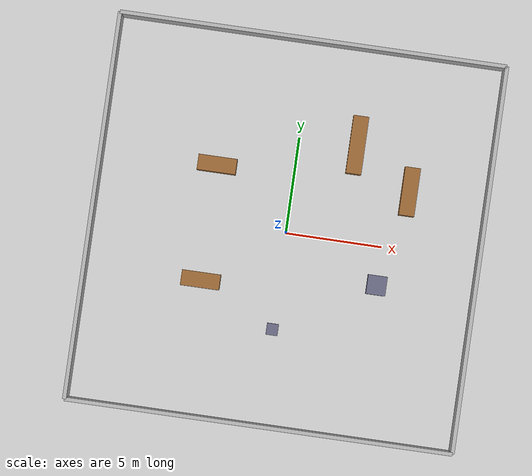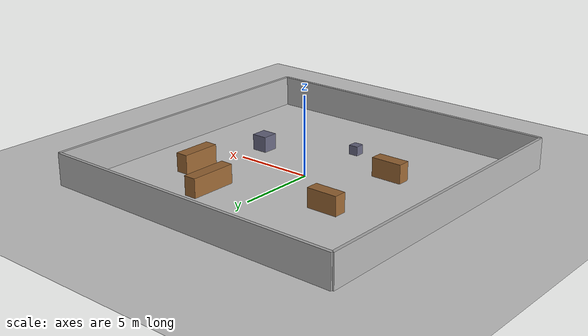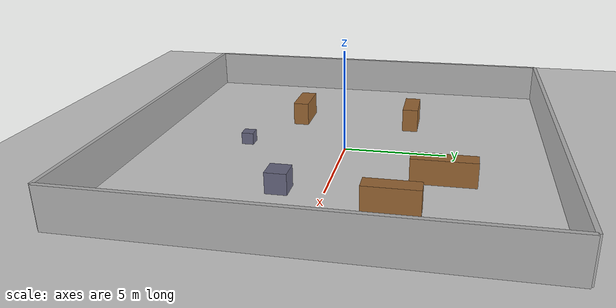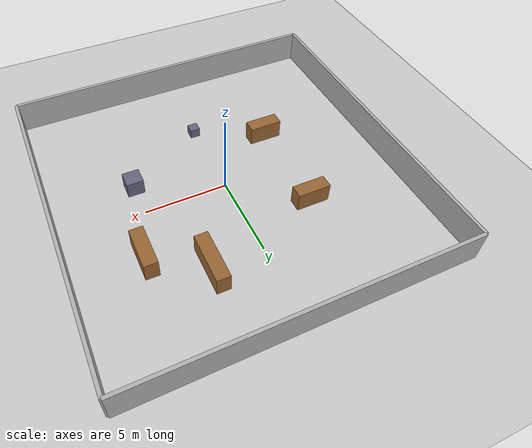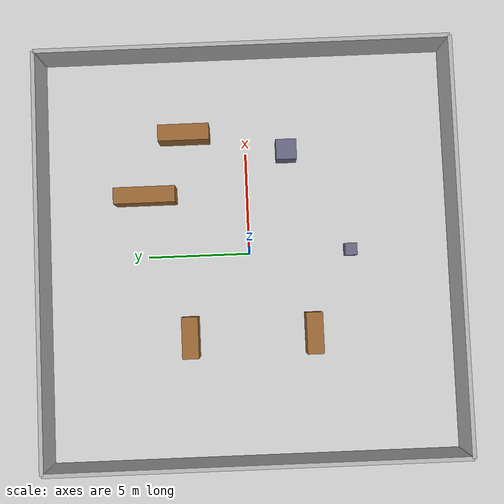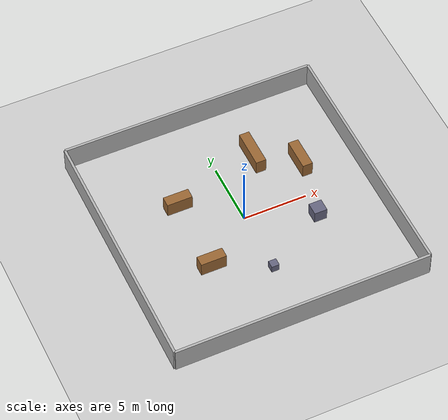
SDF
<?xml version="1.0" ?>
<sdf version="1.6">
  <world name="minimal_warehouse">

    <!-- Physics: ODE, 1ms step, real-time target                       -->
    <physics name="default_physics" default="0" type="ode">
      <max_step_size>0.001</max_step_size>
      <real_time_factor>1.0</real_time_factor>
      <real_time_update_rate>1000</real_time_update_rate>
    </physics>

    <!-- Lighting and ground                                             -->
    <include>
      <uri>model://sun</uri>
    </include>

    <include>
      <uri>model://ground_plane</uri>
    </include>

    <!-- Perimeter walls: 20x20 m enclosure                              -->
    <!-- Wall: 20m long, 0.2m thick, 2m high                             -->
    <model name="wall_north">
      <static>true</static>
      <pose>0 10 1 0 0 0</pose>
      <link name="link">
        <collision name="collision">
          <geometry>
            <box><size>20 0.2 2</size></box>
          </geometry>
        </collision>
        <visual name="visual">
          <geometry>
            <box><size>20 0.2 2</size></box>
          </geometry>
          <material>
            <ambient>0.7 0.7 0.7 1</ambient>
            <diffuse>0.7 0.7 0.7 1</diffuse>
          </material>
        </visual>
      </link>
    </model>

    <model name="wall_south">
      <static>true</static>
      <pose>0 -10 1 0 0 0</pose>
      <link name="link">
        <collision name="collision">
          <geometry>
            <box><size>20 0.2 2</size></box>
          </geometry>
        </collision>
        <visual name="visual">
          <geometry>
            <box><size>20 0.2 2</size></box>
          </geometry>
          <material>
            <ambient>0.7 0.7 0.7 1</ambient>
            <diffuse>0.7 0.7 0.7 1</diffuse>
          </material>
        </visual>
      </link>
    </model>

    <model name="wall_east">
      <static>true</static>
      <pose>10 0 1 0 0 0</pose>
      <link name="link">
        <collision name="collision">
          <geometry>
            <box><size>0.2 20 2</size></box>
          </geometry>
        </collision>
        <visual name="visual">
          <geometry>
            <box><size>0.2 20 2</size></box>
          </geometry>
          <material>
            <ambient>0.7 0.7 0.7 1</ambient>
            <diffuse>0.7 0.7 0.7 1</diffuse>
          </material>
        </visual>
      </link>
    </model>

    <model name="wall_west">
      <static>true</static>
      <pose>-10 0 1 0 0 0</pose>
      <link name="link">
        <collision name="collision">
          <geometry>
            <box><size>0.2 20 2</size></box>
          </geometry>
        </collision>
        <visual name="visual">
          <geometry>
            <box><size>0.2 20 2</size></box>
          </geometry>
          <material>
            <ambient>0.7 0.7 0.7 1</ambient>
            <diffuse>0.7 0.7 0.7 1</diffuse>
          </material>
        </visual>
      </link>
    </model>

    <!-- Obstacles: simulated shelves/crates                             -->
    <!-- Placed asymmetrically to create navigation paths                -->
    <model name="obstacle_1">
      <static>true</static>
      <pose>-4 3 0.6 0 0 0</pose>
      <link name="link">
        <collision name="collision">
          <geometry>
            <box><size>2.0 0.8 1.2</size></box>
          </geometry>
        </collision>
        <visual name="visual">
          <geometry>
            <box><size>2.0 0.8 1.2</size></box>
          </geometry>
          <material>
            <ambient>0.6 0.4 0.2 1</ambient>
            <diffuse>0.6 0.4 0.2 1</diffuse>
          </material>
        </visual>
      </link>
    </model>

    <model name="obstacle_2">
      <static>true</static>
      <pose>-4 -3 0.6 0 0 0</pose>
      <link name="link">
        <collision name="collision">
          <geometry>
            <box><size>2.0 0.8 1.2</size></box>
          </geometry>
        </collision>
        <visual name="visual">
          <geometry>
            <box><size>2.0 0.8 1.2</size></box>
          </geometry>
          <material>
            <ambient>0.6 0.4 0.2 1</ambient>
            <diffuse>0.6 0.4 0.2 1</diffuse>
          </material>
        </visual>
      </link>
    </model>

    <model name="obstacle_3">
      <static>true</static>
      <pose>3 5 0.6 0 0 1.5708</pose>
      <link name="link">
        <collision name="collision">
          <geometry>
            <box><size>3.0 0.8 1.2</size></box>
          </geometry>
        </collision>
        <visual name="visual">
          <geometry>
            <box><size>3.0 0.8 1.2</size></box>
          </geometry>
          <material>
            <ambient>0.6 0.4 0.2 1</ambient>
            <diffuse>0.6 0.4 0.2 1</diffuse>
          </material>
        </visual>
      </link>
    </model>

    <model name="obstacle_4">
      <static>true</static>
      <pose>5 -2 0.5 0 0 0</pose>
      <link name="link">
        <collision name="collision">
          <geometry>
            <box><size>1.0 1.0 1.0</size></box>
          </geometry>
        </collision>
        <visual name="visual">
          <geometry>
            <box><size>1.0 1.0 1.0</size></box>
          </geometry>
          <material>
            <ambient>0.4 0.4 0.5 1</ambient>
            <diffuse>0.4 0.4 0.5 1</diffuse>
          </material>
        </visual>
      </link>
    </model>

    <model name="obstacle_5">
      <static>true</static>
      <pose>0 -5 0.3 0 0 0</pose>
      <link name="link">
        <collision name="collision">
          <geometry>
            <box><size>0.6 0.6 0.6</size></box>
          </geometry>
        </collision>
        <visual name="visual">
          <geometry>
            <box><size>0.6 0.6 0.6</size></box>
          </geometry>
          <material>
            <ambient>0.4 0.4 0.5 1</ambient>
            <diffuse>0.4 0.4 0.5 1</diffuse>
          </material>
        </visual>
      </link>
    </model>

    <model name="obstacle_6">
      <static>true</static>
      <pose>6 3 0.6 0 0 0</pose>
      <link name="link">
        <collision name="collision">
          <geometry>
            <box><size>0.8 2.5 1.2</size></box>
          </geometry>
        </collision>
        <visual name="visual">
          <geometry>
            <box><size>0.8 2.5 1.2</size></box>
          </geometry>
          <material>
            <ambient>0.6 0.4 0.2 1</ambient>
            <diffuse>0.6 0.4 0.2 1</diffuse>
          </material>
        </visual>
      </link>
    </model>

  </world>
</sdf>
